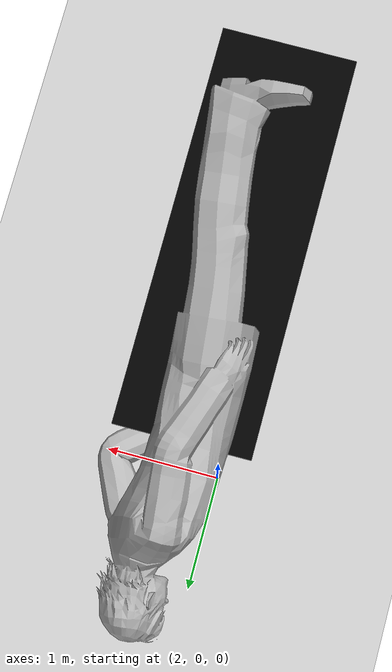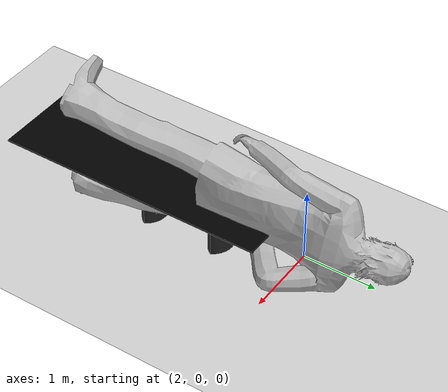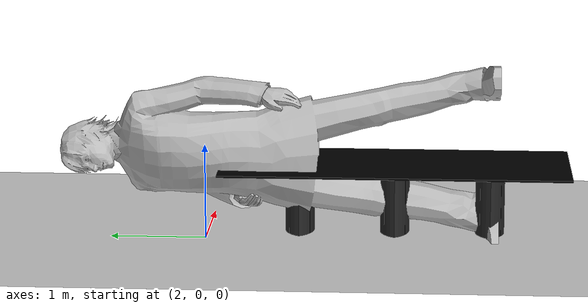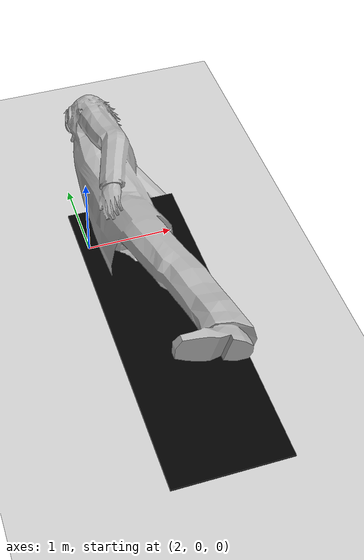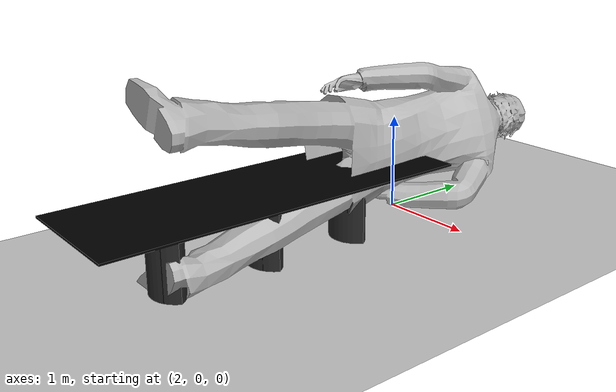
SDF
<sdf version="1.6">
 <world name="default">
  <light name="sun" type="directional">
   <pose>0 0 10 0 -0 0</pose>
   <diffuse>0.8 0.8 0.8 1</diffuse>
   <specular>0.2 0.2 0.2 1</specular>
   <attenuation>
    <range>1000</range>
    <constant>0.9</constant>
    <linear>0.01</linear>
    <quadratic>0.001</quadratic>
   </attenuation>
   <direction>-0.5 0.1 -0.9</direction>
  </light>
  <model name="ground_plane">
   <static>1</static>
   <link name="link">
    <collision name="collision">
     <geometry><plane><normal>0 0 1</normal><size>100 100</size></plane></geometry>
     <surface>
      <contact><collide_bitmask>65535</collide_bitmask></contact>
      <friction><ode><mu>100</mu><mu2>50</mu2></ode></friction>
     </surface>
    </collision>
    <visual name="visual">
     <cast_shadows>0</cast_shadows>
     <geometry><plane><normal>0 0 1</normal><size>100 100</size></plane></geometry>
     <material>
      <script><uri>file://media/materials/scripts/gazebo.material</uri><name>Gazebo/Grey</name></script>
     </material>
    </visual>
   </link>
  </model>
  <gravity>0 0 -9.8</gravity>
  <magnetic_field>6e-06 2.3e-05 -4.2e-05</magnetic_field>
  <atmosphere type="adiabatic"/>
  <physics name="default_physics" default="0" type="ode">
   <max_step_size>0.001</max_step_size>
   <real_time_factor>1</real_time_factor>
   <real_time_update_rate>1000</real_time_update_rate>
  </physics>
  <scene><ambient>0.4 0.4 0.4 1</ambient><background>0.7 0.7 0.7 1</background><shadows>1</shadows></scene>
  <audio><device>default</device></audio>
  <spherical_coordinates>
   <surface_model>EARTH_WGS84</surface_model>
   <latitude_deg>0</latitude_deg>
   <longitude_deg>0</longitude_deg>
   <elevation>0</elevation>
   <heading_deg>0</heading_deg>
  </spherical_coordinates>
  <model name="table_conference_3">
   <link name="link_6">
    <visual name="visual">
     <geometry><mesh><uri>model://table_conference_3/meshes/leg.dae</uri><scale>1 1 1</scale></mesh></geometry>
     <material>
      <script>
       <uri>model://table_conference_3/materials/scripts</uri>
       <uri>model://table_conference_3/materials/textures</uri>
       <name>table_conf_3</name>
      </script>
     </material>
    </visual>
    <collision name="collision">
     <geometry><mesh><uri>model://table_conference_3/meshes/leg.dae</uri><scale>1 1 1</scale></mesh></geometry>
    </collision>
   </link>
   <link name="link_7">
    <visual name="visual">
     <geometry><mesh><uri>model://table_conference_3/meshes/top.dae</uri><scale>1 1 1</scale></mesh></geometry>
     <material>
      <ambient>0 0 0 1</ambient>
      <diffuse>0 0 0 1</diffuse>
      <specular>0 0 0 1</specular>
      <emissive>0 0 0 1</emissive>
     </material>
    </visual>
    <collision name="collision">
     <geometry><mesh><uri>model://table_conference_3/meshes/top.dae</uri><scale>1 1 1</scale></mesh></geometry>
    </collision>
   </link>
   <link name="link_8">
    <pose>0 1 0 0 -0 0</pose>
    <visual name="visual">
     <geometry><mesh><uri>model://table_conference_3/meshes/leg.dae</uri><scale>1 1 1</scale></mesh></geometry>
     <material>
      <script>
       <uri>model://table_conference_3/materials/scripts</uri>
       <uri>model://table_conference_3/materials/textures</uri>
       <name>table_conf_3</name>
      </script>
     </material>
    </visual>
    <collision name="collision">
     <geometry><mesh><uri>model://table_conference_3/meshes/leg.dae</uri><scale>1 1 1</scale></mesh></geometry>
    </collision>
   </link>
   <link name="link_9">
    <pose>0 -1 0 0 -0 0</pose>
    <visual name="visual">
     <geometry><mesh><uri>model://table_conference_3/meshes/leg.dae</uri><scale>1 1 1</scale></mesh></geometry>
     <material>
      <script>
       <uri>model://table_conference_3/materials/scripts</uri>
       <uri>model://table_conference_3/materials/textures</uri>
       <name>table_conf_3</name>
      </script>
     </material>
    </visual>
    <collision name="collision">
     <geometry><mesh><uri>model://table_conference_3/meshes/leg.dae</uri><scale>1 1 1</scale></mesh></geometry>
    </collision>
   </link>
   <static>1</static>
   <pose>2.33467 -1.97651 0 0 -0 0</pose>
  </model>
  <model name="human">
   <static>1</static>
   <link name="link">
    <visual name="visual">
     <geometry><mesh><uri>model://human/meshes/human.dae</uri></mesh></geometry>
     <material><lighting>1</lighting></material>
    </visual>
    <collision name="collision">
     <geometry><mesh><uri>model://human/meshes/human.dae</uri></mesh></geometry>
    </collision>
   </link>
   <pose>2.37694 -3.06697 0.839094 -1.58108 -1.56985 -3e-05</pose>
  </model>
  <light name="user_directional_light_0" type="directional">
   <pose>0.590163 -2.37756 1 0 -0 0</pose>
   <diffuse>0.5 0.5 0.5 1</diffuse>
   <specular>0.1 0.1 0.1 1</specular>
   <direction>0.1 0.1 -0.9</direction>
   <attenuation>
    <range>20</range>
    <constant>0.5</constant>
    <linear>0.01</linear>
    <quadratic>0.001</quadratic>
   </attenuation>
  </light>
 </world>
</sdf>
